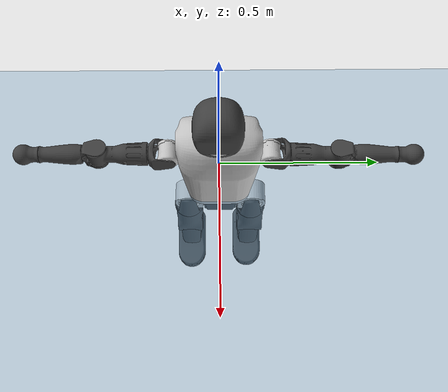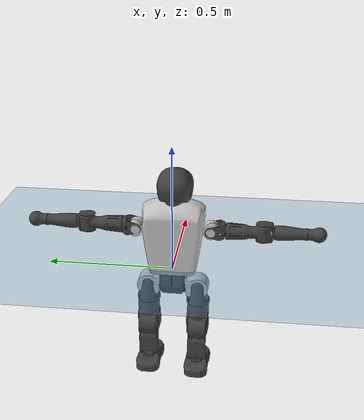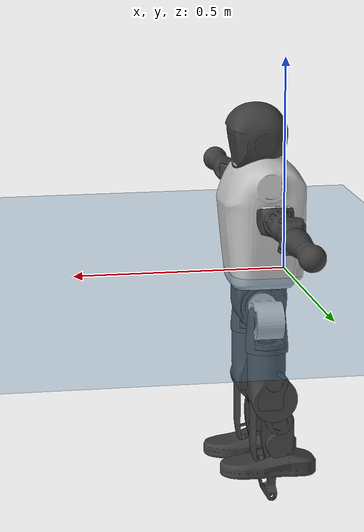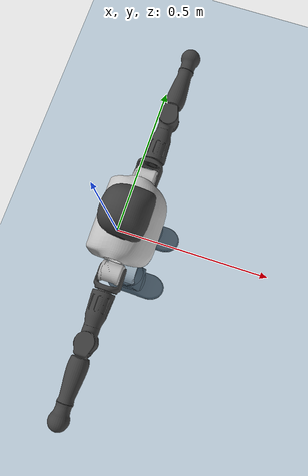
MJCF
<mujoco model="T1">
  <compiler angle="radian" assetdir="assets" balanceinertia="true" inertiafromgeom="false"/>

  <option timestep="0.005" density="1.2" viscosity="2e-05"/>

  <size nkey="1"/>

  <visual>
    <quality shadowsize="8192"/>
    <map shadowclip="0.5"/>
  </visual>

  <default>
    <default class="/">
      <joint armature="0.01" damping="0.01" frictionloss="0.1"/>
      <geom contype="0" conaffinity="0" group="1" solref="-1000 -80"/>
      <site size="0.01 0.005 0.005" group="5"/>
      <general forcelimited="true" biastype="affine" gainprm="25" biasprm="0 -25 -0.6"/>
      <default class="t1">
        <geom rgba="0.25 0.25 0.25 1"/>
        <default class="visual">
          <geom type="mesh" group="2"/>
        </default>
        <default class="collision">
          <geom group="3"/>
        </default>
        <default class="foot">
          <geom size="0.1115 0.05 0.015" type="box" condim="6" group="4" priority="1" solimp="0.015 1 0.015"/>
        </default>
        <default class="reward_collision_sphere">
          <geom group="5" rgba="1 0 0 1"/>
        </default>
      </default>
    </default>
  </default>

  <asset>
    <texture type="skybox" colorspace="auto" name="//unnamed_texture_0" builtin="gradient" rgb1="0.95 0.95 0.95" rgb2="0.95 0.95 0.95" width="100" height="600"/>
    <texture type="2d" colorspace="auto" name="texplane" builtin="checker" rgb1="0.345 0.575 0.748" rgb2="0.345 0.575 0.748" markrgb="1 1 1" width="512" height="512"/>
    <material name="MatPlane" class="/" texture="texplane" texuniform="true" texrepeat="2 2" specular="0.9"/>
    <mesh name="Trunk" class="/" file="Trunk.stl"/>
    <mesh name="H1" class="/" file="H1.stl"/>
    <mesh name="H2" class="/" file="H2.stl"/>
    <mesh name="AL1" class="/" file="AL1.stl"/>
    <mesh name="AL2" class="/" file="AL2.stl"/>
    <mesh name="AL3" class="/" file="AL3.stl"/>
    <mesh name="left_hand_link" class="/" file="left_hand_link.stl"/>
    <mesh name="AR1" class="/" file="AR1.stl"/>
    <mesh name="AR2" class="/" file="AR2.stl"/>
    <mesh name="AR3" class="/" file="AR3.stl"/>
    <mesh name="right_hand_link" class="/" file="right_hand_link.stl"/>
    <mesh name="Waist" class="/" file="Waist.stl"/>
    <mesh name="Hip_Pitch_Left" class="/" file="Hip_Pitch_Left.stl"/>
    <mesh name="Hip_Roll_Left" class="/" file="Hip_Roll_Left.stl"/>
    <mesh name="Hip_Yaw_Left" class="/" file="Hip_Yaw_Left.stl"/>
    <mesh name="Shank_Left" class="/" file="Shank_Left.stl"/>
    <mesh name="Ankle_Cross_Left" class="/" file="Ankle_Cross_Left.stl"/>
    <mesh name="left_foot_link" class="/" file="left_foot_link.stl"/>
    <mesh name="Hip_Pitch_Right" class="/" file="Hip_Pitch_Right.stl"/>
    <mesh name="Hip_Roll_Right" class="/" file="Hip_Roll_Right.stl"/>
    <mesh name="Hip_Yaw_Right" class="/" file="Hip_Yaw_Right.stl"/>
    <mesh name="Shank_Right" class="/" file="Shank_Right.stl"/>
    <mesh name="Ankle_Cross_Right" class="/" file="Ankle_Cross_Right.stl"/>
    <mesh name="right_foot_link" class="/" file="right_foot_link.stl"/>
  </asset>

  <worldbody>
    <geom name="floor" class="/" size="100 100 0.125" type="plane" group="0" material="MatPlane"/>
    <light name="toplight_shadow" class="/" pos="0 0 5" dir="0.0990148 0.0990148 -0.990148" type="directional" ambient="0.04 0.04 0.04" diffuse="0.55 0.55 0.55" specular="0.12 0.12 0.12"/>
    <light name="toplight_fill" class="/" pos="0 0 5" dir="0.0990148 0.0990148 -0.990148" type="directional" castshadow="false" ambient="0.04 0.04 0.04" diffuse="0.3 0.3 0.3" specular="0.08 0.08 0.08"/>
    <body name="trunk" childclass="t1" pos="0.000225672 -0.00019837 0.000373969" quat="1 0.000319432 -0.000340606 -5.14169e-05">
      <inertial pos="0.051361 -0.00194502 0.0705301" quat="0.999801 0.00183283 -0.0184223 0.00746719" mass="7.89589" diaginertia="0.0693982 0.0685076 0.00904103"/>
      <joint name="//unnamed_joint_0" type="free" armature="0" damping="0" frictionloss="0"/>
      <geom name="//unnamed_geom_1" class="visual" rgba="0.76 0.76 0.76 1" mesh="Trunk"/>
      <geom name="//unnamed_geom_2" class="collision" size="0.0650234 0.0866979 0.130047" pos="0.0565755 0 0.0825632" type="box"/>
      <geom name="//unnamed_geom_3" class="reward_collision_sphere" size="0.0997026" pos="0.0565755 0 0.0688027"/>
      <geom name="//unnamed_geom_4" class="reward_collision_sphere" size="0.0130047" pos="0.0565755 0.0824487 0"/>
      <geom name="//unnamed_geom_5" class="reward_collision_sphere" size="0.0130047" pos="0.0565755 -0.0824487 0"/>
      <geom name="//unnamed_geom_6" class="reward_collision_sphere" size="0.0130047" pos="0.0565755 0.103788 0.123845"/>
      <geom name="//unnamed_geom_7" class="reward_collision_sphere" size="0.0130047" pos="0.0565755 -0.103788 0.123845"/>
      <site name="imu" pos="-0.011822 0.00336659 0.0133919" size="0.00866979"/>
      <camera name="track" pos="0 -1.93997 0" quat="0.707107 0.707107 0 0" mode="trackcom"/>
      <camera name="ego_camera" pos="0.115037 0 0.288971" quat="-0.5 -0.5 0.5 0.5"/>
      <body name="H1" pos="0.0552022 -0.0022387 0.167407" quat="0.999999 0.000897186 0.000576179 6.39965e-05">
        <inertial pos="-0.000407014 -0.00335653 0.0374638" quat="0.759146 -0.00732521 0.0110872 0.650785" mass="0.281679" diaginertia="0.000175539 0.000191174 2.27476e-05"/>
        <joint name="AAHead_yaw" pos="0 0 0" axis="0.000933795 -0.00328735 0.999994" range="-1.52145 1.60252" armature="0.0097264" damping="0.0202404" frictionloss="0.0755369"/>
        <geom name="//unnamed_geom_8" class="visual" mesh="H1"/>
        <body name="H2" pos="-0.00135969 0.00115501 0.0406176" quat="1 -0.000271362 0.000349996 -0.0001716">
          <inertial pos="0.00463605 -0.000378258 0.0692835" quat="0.989881 0.104337 -0.0704365 -0.0654827" mass="0.39699" diaginertia="0.00155898 0.00158654 0.000259067"/>
          <joint name="Head_pitch" pos="0 0 0" axis="0.0029345 -0.999921 0.0122185" stiffness="0.00427262" range="-1.21844 0.376692" armature="0.0087898" damping="0" frictionloss="0.0887259"/>
          <geom name="//unnamed_geom_9" class="visual" mesh="H2"/>
          <geom name="//unnamed_geom_10" class="collision" size="0.0693583" pos="0.00942925 0 0.0756829"/>
          <geom name="//unnamed_geom_11" class="reward_collision_sphere" size="0.0780281" pos="0.0188585 0 0.0688027"/>
        </body>
      </body>
      <body name="AL1" pos="0.0539262 0.103516 0.151183" quat="0.999999 -0.000715295 0.000510193 -0.00107565">
        <inertial pos="0.0021491 0.0460907 -0.00129318" quat="0.510975 0.488225 -0.508565 0.491836" mass="0.331313" diaginertia="0.000984 0.00110061 4.60587e-05"/>
        <joint name="Left_Shoulder_Pitch" pos="0 0 0" axis="0.0122307 0.999913 0.0048741" stiffness="0.00972871" range="-3.29156 1.18796" armature="0.00953062" damping="0.0173722" frictionloss="0.0865527"/>
        <geom name="//unnamed_geom_12" class="visual" rgba="0.76 0.76 0.76 1" mesh="AL1"/>
        <body name="AL2" pos="0.00341925 0.0448729 0.00264718" quat="0.999999 0.000481796 -0.000178457 -0.00105418">
          <inertial pos="0.00688551 0.0379689 -0.000671751" quat="0.487983 0.507503 -0.485817 0.517972" mass="0.0988017" diaginertia="0.000292448 0.000293018 2.60849e-05"/>
          <joint name="Left_Shoulder_Roll" pos="0 0 0" axis="-0.999868 0.0109676 -0.0119678" range="-1.60848 1.70984" armature="0.00971446" damping="0.0174088" frictionloss="0.0748798"/>
          <geom name="//unnamed_geom_13" class="visual" mesh="AL2"/>
          <body name="AL3" pos="0.00338568 0.0579978 0.00180685" quat="0.999999 -0.00109301 0.000527592 -0.000813455">
            <inertial pos="0.000773671 0.0829506 2.24277e-06" quat="0.706556 0.707657 9.2659e-06 9.9077e-05" mass="0.652349" diaginertia="0.00942272 0.01077 9.13188e-05"/>
            <joint name="Left_Elbow_Pitch" pos="0 0 0" axis="0.00100638 -0.999979 -0.00643578" stiffness="0.0209099" range="-2.323 2.24375" armature="0.00835122" damping="0.0117576" frictionloss="0.0825881"/>
            <geom name="//unnamed_geom_14" class="visual" mesh="AL3"/>
            <geom name="//unnamed_geom_15" class="collision" size="0.0260094 0.0650234" pos="0 0.0484992 0" quat="0.707105 0.707108 0 0" type="cylinder"/>
            <geom name="//unnamed_geom_16" class="reward_collision_sphere" size="0.0312112"/>
            <body name="left_hand_link" pos="0.000957949 0.140633 0.00222735" quat="1 3.35581e-05 -7.40646e-05 -0.000685464">
              <inertial pos="-0.000234917 0.103971 0.00145734" quat="0.705955 0.708252 0.00275103 0.00049852" mass="0.220274" diaginertia="0.00648301 0.00716574 3.32756e-05"/>
              <joint name="Left_Elbow_Yaw" pos="0 0 0" axis="-6.98585e-05 0.00044428 1" range="-2.43612 0.00301834" armature="0.00851236" damping="0.00406745" frictionloss="0.0764814"/>
              <geom name="//unnamed_geom_17" class="visual" mesh="left_hand_link"/>
              <geom name="//unnamed_geom_18" class="collision" size="0.0260094 0.0758607" pos="0 0.126098 0" quat="0.707105 0.707108 0 0" type="cylinder"/>
              <geom name="//unnamed_geom_19" class="reward_collision_sphere" size="0.043349"/>
              <geom name="//unnamed_geom_20" class="reward_collision_sphere" size="0.0303443" pos="0 0.106698 0"/>
              <geom name="//unnamed_geom_21" class="reward_collision_sphere" size="0.0303443" pos="0 0.208547 0"/>
            </body>
          </body>
        </body>
      </body>
      <body name="AR1" pos="0.0545372 -0.101742 0.152059" quat="0.999999 -0.000417247 0.00134452 0.00062575">
        <inertial pos="-0.00151429 -0.0458269 0.00170351" quat="0.503972 0.496046 -0.503955 0.495964" mass="0.352602" diaginertia="0.00100372 0.00106658 4.50585e-05"/>
        <joint name="Right_Shoulder_Pitch" pos="0 0 0" axis="0.0126342 -0.999915 -0.00332644" range="-1.25732 3.27296" armature="0.0089188" damping="0.00633442" frictionloss="0.0873096"/>
        <geom name="//unnamed_geom_22" class="visual" rgba="0.76 0.76 0.76 1" mesh="AR1"/>
        <body name="AR2" pos="0.00130805 -0.0449289 -0.000701124" quat="0.999999 0.000952893 0.000767866 3.73941e-05">
          <inertial pos="0.00148746 -0.0339695 -0.00108148" quat="0.503327 0.4919 -0.516039 0.488263" mass="0.109878" diaginertia="0.000312774 0.000316619 2.72533e-05"/>
          <joint name="Right_Shoulder_Roll" pos="0 0 0" axis="-0.999996 0.000106246 0.00286621" stiffness="0.00459633" range="-1.69516 1.59907" armature="0.00829809" damping="0.0203874" frictionloss="0.0912839"/>
          <geom name="//unnamed_geom_23" class="visual" mesh="AR2"/>
          <body name="AR3" pos="-0.00234312 -0.0611499 -0.000626139" quat="1 0.00024694 5.9759e-05 0.000384396">
            <inertial pos="-0.00018676 -0.0854077 -0.00106404" quat="0.699147 0.714936 0.00383698 0.00678614" mass="0.642757" diaginertia="0.0092812 0.0111638 9.24881e-05"/>
            <joint name="Right_Elbow_Pitch" pos="0 0 0" axis="-0.00294705 0.999995 0.000792144" range="-2.26734 2.27903" armature="0.00783866" damping="0.0149218" frictionloss="0.0796064"/>
            <geom name="//unnamed_geom_24" class="visual" mesh="AR3"/>
            <geom name="//unnamed_geom_25" class="collision" size="0.0260094 0.0650234" pos="0 -0.0484992 0" quat="0.707105 0.707108 0 0" type="cylinder"/>
            <geom name="//unnamed_geom_26" class="reward_collision_sphere" size="0.0312112"/>
            <body name="right_hand_link" pos="0.000625031 -0.144139 0.00264629" quat="0.999999 -0.000439758 -0.00114084 -8.05605e-06">
              <inertial pos="0.00166287 -0.106015 -0.000766057" quat="0.708974 0.705229 0.00280621 -0.000677542" mass="0.223516" diaginertia="0.0061127 0.00707645 3.38607e-05"/>
              <joint name="Right_Elbow_Yaw" pos="0 0 0" axis="-0.000348099 -0.00836248 0.999965" range="-0.00656422 2.47991" armature="0.00760442" damping="0.00397675" frictionloss="0.0882469"/>
              <geom name="//unnamed_geom_27" class="visual" mesh="right_hand_link"/>
              <geom name="//unnamed_geom_28" class="collision" size="0.0260094 0.0758607" pos="0 -0.126098 0" quat="0.707105 0.707108 0 0" type="cylinder"/>
              <geom name="//unnamed_geom_29" class="reward_collision_sphere" size="0.043349"/>
              <geom name="//unnamed_geom_30" class="reward_collision_sphere" size="0.0303443" pos="0 -0.106698 0"/>
              <geom name="//unnamed_geom_31" class="reward_collision_sphere" size="0.0303443" pos="0 -0.208547 0"/>
            </body>
          </body>
        </body>
      </body>
      <body name="Waist" pos="0.060842 0.00326659 -0.0796732" quat="1 -0.000685834 0.000289248 0.000179974">
        <inertial pos="0.000286914 -0.000863658 0.00499254" quat="0.985712 -0.00466275 -0.16836 0.00215635" mass="1.7064" diaginertia="0.00397692 0.00461771 0.000744285"/>
        <joint name="Waist" pos="0 0 0" axis="0.00680067 0.00761001 0.999948" range="-1.61961 1.61924" armature="0.00877522" damping="0.0251471" frictionloss="0.0830653"/>
        <geom name="//unnamed_geom_32" class="visual" mesh="Waist"/>
        <body name="Hip_Pitch_Left" pos="0.00176419 0.102179 0.00123105" quat="1 0.000288981 0.000242499 -0.000760138">
          <inertial pos="-0.000493844 -0.00929025 -0.0124587" quat="0.974682 0.222889 0.0177634 -0.000495069" mass="0.634152" diaginertia="0.00130277 0.00118335 0.000187333"/>
          <joint name="Left_Hip_Pitch" pos="0 0 0" axis="0.0196563 0.999785 -0.00655211" stiffness="0.00644648" range="-1.77714 1.60362" armature="0.00883887" damping="0.028364" frictionloss="0.0870013"/>
          <geom name="//unnamed_geom_33" class="visual" rgba="0.76 0.76 0.76 1" mesh="Hip_Pitch_Left"/>
          <body name="Hip_Roll_Left" pos="0.00260321 -0.000799719 -0.0151649" quat="1 0.000373791 -1.78627e-05 -0.000122004">
            <inertial pos="0.00312085 0.0010912 -0.0401418" quat="0.707988 -0.00975978 -0.00783611 0.706113" mass="0.249572" diaginertia="0.00128708 0.00130292 7.90266e-05"/>
            <joint name="Left_Hip_Roll" pos="0 0 0" axis="-1 0.000309589 9.5286e-05" range="-1.51343 0.152944" armature="0.00878685" damping="0.00773779" frictionloss="0.0882307"/>
            <geom name="//unnamed_geom_34" class="visual" mesh="Hip_Roll_Left"/>
            <geom name="//unnamed_geom_35" class="reward_collision_sphere" size="0.0476838"/>
            <body name="Hip_Yaw_Left" pos="-0.00211712 0.00114265 -0.0542188" quat="1 -0.000145999 -8.99658e-05 -0.000695328">
              <inertial pos="-0.00579332 -0.000895998 -0.0623187" quat="0.702761 -0.0394619 -0.036131 0.709412" mass="1.37203" diaginertia="0.0195767 0.0224618 0.000411826"/>
              <joint name="Left_Hip_Yaw" pos="0 0 0" axis="-0.00400432 -0.000822073 -0.999992" stiffness="0.0112539" range="-1.00546 1.04874" armature="0.00884106" damping="0" frictionloss="0.0859107"/>
              <geom name="//unnamed_geom_36" class="visual" mesh="Hip_Yaw_Left"/>
              <geom name="//unnamed_geom_37" class="collision" size="0.043349 0.0693583" type="cylinder"/>
              <body name="Shank_Left" pos="-0.0115909 -0.00235051 -0.0931747" quat="0.999999 0.000625842 0.000670713 -0.000516634">
                <inertial pos="-0.00513942 0.00275723 -0.0842244" quat="0.997617 -0.000843368 -0.0228447 0.0651006" mass="1.14301" diaginertia="0.0247011 0.0296863 0.000277602"/>
                <joint name="Left_Knee_Pitch" pos="0 0 0" axis="-0.00220286 0.999993 0.00295038" range="0.0493738 2.33399" armature="0.00981825" damping="0.00901653" frictionloss="0.0853139"/>
                <geom name="//unnamed_geom_38" class="visual" mesh="Shank_Left"/>
                <geom name="//unnamed_geom_39" class="collision" size="0.043349 0.0650234" pos="0 0 -0.0825632" type="cylinder"/>
                <geom name="//unnamed_geom_40" class="reward_collision_sphere" size="0.0563536"/>
                <body name="Ankle_Cross_Left" pos="-0.00285379 -0.00132072 -0.191039" quat="1 0.000789533 -0.00045264 -1.73472e-05">
                  <inertial pos="-0.00466571 0.00205695 -0.00297826" quat="0.448092 0.559134 0.542166 0.438907" mass="0.0480244" diaginertia="2.12316e-05 2.14181e-05 1.68637e-06"/>
                  <joint name="Left_Ankle_Pitch" pos="0 0 0" axis="-0.0050193 0.999938 0.00996168" range="-0.813793 0.38842" armature="0.00771739" damping="0.0282757" frictionloss="0.084058"/>
                  <geom name="//unnamed_geom_41" class="visual" mesh="Ankle_Cross_Left"/>
                  <body name="left_foot_link" pos="-0.000859214 -0.0013149 -0.00647086" quat="0.999999 -0.001174 -3.36515e-05 -0.000544116">
                    <inertial pos="-0.00263156 0.00134031 -0.00401911" quat="0.00103547 0.620376 0.00315349 0.784297" mass="0.431823" diaginertia="0.00203832 0.00204879 0.000347771"/>
                    <joint name="Left_Ankle_Roll" pos="0 0 0" axis="-0.999881 0.0112794 -0.0104925" stiffness="0.00650041" range="-0.47126 0.389487" armature="0.00877436" damping="0" frictionloss="0.0913452"/>
                    <geom name="//unnamed_geom_42" class="visual" mesh="left_foot_link"/>
                    <geom name="left_foot" class="foot" size="0.109742 0.0338955 0.0142186" pos="0.00942925 0 -0.0103204"/>
                    <geom name="//unnamed_geom_44" class="reward_collision_sphere" size="0.0450829" pos="0.00942925 0 -0.0103204"/>
                    <geom name="//unnamed_geom_45" class="reward_collision_sphere" size="0.0260094" pos="0.0895779 -0.0223097 -0.0103204"/>
                    <geom name="//unnamed_geom_46" class="reward_collision_sphere" size="0.0260094" pos="-0.0660048 -0.0223097 -0.0103204"/>
                    <site name="left_foot" class="foot" pos="0.00942925 0 -0.0103204" size="0.00866979"/>
                  </body>
                </body>
              </body>
            </body>
          </body>
        </body>
        <body name="Hip_Pitch_Right" pos="-0.00224933 -0.101299 -0.00306762" quat="0.999999 0.000386362 -0.000229808 -0.00103796">
          <inertial pos="0.000332252 0.0103257 -0.0138407" quat="0.973784 -0.226889 0.0157385 -0.00428399" mass="0.68531" diaginertia="0.00139261 0.00129287 0.000199961"/>
          <joint name="Right_Hip_Pitch" pos="0 0 0" axis="-0.000216406 -0.999999 0.00169683" range="-1.55063 1.79799" armature="0.00861701" damping="0" frictionloss="0.0956595"/>
          <geom name="//unnamed_geom_47" class="visual" rgba="0.76 0.76 0.76 1" mesh="Hip_Pitch_Right"/>
          <body name="Hip_Roll_Right" pos="-0.000470836 -0.00210525 -0.0129566" quat="0.999999 -0.000283569 -5.23604e-05 0.00127678">
            <inertial pos="-0.000964427 0.00194951 -0.0381801" quat="0.706801 -0.00737502 -0.00562572 0.707352" mass="0.247684" diaginertia="0.00126714 0.00133066 7.8854e-05"/>
            <joint name="Right_Hip_Roll" pos="0 0 0" axis="-0.999982 0.0059898 7.48618e-05" range="-0.203139 1.58038" armature="0.00879494" damping="0.0185896" frictionloss="0.0854482"/>
            <geom name="//unnamed_geom_48" class="visual" mesh="Hip_Roll_Right"/>
            <geom name="//unnamed_geom_49" class="reward_collision_sphere" size="0.0476838"/>
            <body name="Hip_Yaw_Right" pos="0.000847858 -0.000341555 -0.0594369" quat="1 -0.000237785 0.000169876 0.000253941">
              <inertial pos="-0.00446394 -0.00285027 -0.0592693" quat="0.717424 -0.0278711 -0.0289812 0.695475" mass="1.44781" diaginertia="0.0187691 0.0207816 0.000407593"/>
              <joint name="Right_Hip_Yaw" pos="0 0 0" axis="0.0119232 -0.0136321 -0.999836" stiffness="0.0158713" range="-0.965958 1.05613" armature="0.0086571" damping="0.0155315" frictionloss="0.0913719"/>
              <geom name="//unnamed_geom_50" class="visual" mesh="Hip_Yaw_Right"/>
              <geom name="//unnamed_geom_51" class="collision" size="0.043349 0.0693583" type="cylinder"/>
              <body name="Shank_Right" pos="-0.0119779 0.00124466 -0.095333" quat="1 -2.79914e-05 0.0004599 -0.000327277">
                <inertial pos="-0.00602415 0.00174158 -0.0865461" quat="0.999258 -0.00349086 -0.0209172 -0.0321397" mass="1.10815" diaginertia="0.0259932 0.0296035 0.000294835"/>
                <joint name="Right_Knee_Pitch" pos="0 0 0" axis="-0.00737886 -0.99988 -0.0135939" stiffness="0.00454967" range="-2.39542 0.0296237" armature="0.00890102" damping="0.0196583" frictionloss="0.097967"/>
                <geom name="//unnamed_geom_52" class="visual" mesh="Shank_Right"/>
                <geom name="//unnamed_geom_53" class="collision" size="0.043349 0.0650234" pos="0 0 -0.0825632" type="cylinder"/>
                <geom name="//unnamed_geom_54" class="reward_collision_sphere" size="0.0563536"/>
                <body name="Ankle_Cross_Right" pos="0.000355953 -0.000207136 -0.193777" quat="1 -0.0001737 0.000147545 -0.000155727">
                  <inertial pos="-0.00346593 -0.00103865 -0.00470389" quat="0.437253 0.546108 0.561556 0.44185" mass="0.0473756" diaginertia="2.13064e-05 2.18726e-05 1.69813e-06"/>
                  <joint name="Right_Ankle_Pitch" pos="0 0 0" axis="0.0122387 -0.999908 0.00587672" stiffness="0.0187535" range="-0.33653 0.849668" armature="0.0088107" damping="0.00248645" frictionloss="0.0975799"/>
                  <geom name="//unnamed_geom_55" class="visual" mesh="Ankle_Cross_Right"/>
                  <body name="right_foot_link" pos="0.000887051 -0.00131322 -0.00730715" quat="0.999999 0.000636428 0.00083109 0.000161897">
                    <inertial pos="0.00249367 -0.00120088 -0.00585884" quat="0.000761268 0.616433 -0.00581865 0.787385" mass="0.460461" diaginertia="0.00204409 0.00214658 0.00033763"/>
                    <joint name="Right_Ankle_Roll" pos="0 0 0" axis="-0.999999 -0.000946927 -0.00110963" range="-0.492013 0.488735" armature="0.00830917" damping="0.0103877" frictionloss="0.0896268"/>
                    <geom name="//unnamed_geom_56" class="visual" mesh="right_foot_link"/>
                    <geom name="right_foot" class="foot" size="0.110695 0.038935 0.0127715" pos="0.00942925 0 -0.0103204"/>
                    <geom name="//unnamed_geom_58" class="reward_collision_sphere" size="0.0346792"/>
                    <geom name="//unnamed_geom_59" class="reward_collision_sphere" size="0.0260094" pos="0.00942925 0 -0.0103204"/>
                    <geom name="//unnamed_geom_60" class="reward_collision_sphere" size="0.0260094" pos="0.0895779 0.0223097 -0.0103204"/>
                    <geom name="//unnamed_geom_61" class="reward_collision_sphere" size="0.0260094" pos="-0.0660048 0.0223097 -0.0103204"/>
                    <site name="right_foot" class="foot" pos="0.00942925 0 -0.0103204" size="0.00866979"/>
                  </body>
                </body>
              </body>
            </body>
          </body>
        </body>
      </body>
    </body>
  </worldbody>

  <contact>
    <pair class="/" geom1="floor" geom2="left_foot" name="//unnamed_contact_0"/>
    <pair class="/" geom1="floor" geom2="right_foot" name="//unnamed_contact_1"/>
  </contact>

  <actuator>
    <general name="AAHead_yaw" class="/" joint="AAHead_yaw" forcerange="-5.51094 5.51094" gainprm="22.3488" biasprm="0 -22.3488 -0.565005"/>
    <general name="Head_pitch" class="/" joint="Head_pitch" forcerange="-6.34734 6.34734" gainprm="22.3488" biasprm="0 -22.3488 -0.565005"/>
    <general name="Left_Shoulder_Pitch" class="/" joint="Left_Shoulder_Pitch" forcerange="-16.2106 16.2106" gainprm="22.3488" biasprm="0 -22.3488 -0.565005"/>
    <general name="Left_Shoulder_Roll" class="/" joint="Left_Shoulder_Roll" forcerange="-15.9358 15.9358" gainprm="22.3488" biasprm="0 -22.3488 -0.565005"/>
    <general name="Left_Elbow_Pitch" class="/" joint="Left_Elbow_Pitch" forcerange="-15.5913 15.5913" gainprm="22.3488" biasprm="0 -22.3488 -0.565005"/>
    <general name="Left_Elbow_Yaw" class="/" joint="Left_Elbow_Yaw" forcerange="-14.62 14.62" gainprm="22.3488" biasprm="0 -22.3488 -0.565005"/>
    <general name="Right_Shoulder_Pitch" class="/" joint="Right_Shoulder_Pitch" forcerange="-15.9426 15.9426" gainprm="22.3488" biasprm="0 -22.3488 -0.565005"/>
    <general name="Right_Shoulder_Roll" class="/" joint="Right_Shoulder_Roll" forcerange="-15.5767 15.5767" gainprm="22.3488" biasprm="0 -22.3488 -0.565005"/>
    <general name="Right_Elbow_Pitch" class="/" joint="Right_Elbow_Pitch" forcerange="-14.1633 14.1633" gainprm="22.3488" biasprm="0 -22.3488 -0.565005"/>
    <general name="Right_Elbow_Yaw" class="/" joint="Right_Elbow_Yaw" forcerange="-15.3658 15.3658" gainprm="22.3488" biasprm="0 -22.3488 -0.565005"/>
    <general name="Waist" class="/" joint="Waist" forcerange="-28.5695 28.5695" gainprm="22.3488" biasprm="0 -22.3488 -0.565005"/>
    <general name="Left_Hip_Pitch" class="/" joint="Left_Hip_Pitch" forcerange="-42.6685 42.6685" gainprm="22.3488" biasprm="0 -22.3488 -0.565005"/>
    <general name="Left_Hip_Roll" class="/" joint="Left_Hip_Roll" forcerange="-28.2664 28.2664" gainprm="22.3488" biasprm="0 -22.3488 -0.565005"/>
    <general name="Left_Hip_Yaw" class="/" joint="Left_Hip_Yaw" forcerange="-28.8551 28.8551" gainprm="22.3488" biasprm="0 -22.3488 -0.565005"/>
    <general name="Left_Knee_Pitch" class="/" joint="Left_Knee_Pitch" forcerange="-50.7443 50.7443" gainprm="22.3488" biasprm="0 -22.3488 -0.565005"/>
    <general name="Left_Ankle_Pitch" class="/" joint="Left_Ankle_Pitch" forcerange="-18.5708 18.5708" gainprm="22.3488" biasprm="0 -22.3488 -0.565005"/>
    <general name="Left_Ankle_Roll" class="/" joint="Left_Ankle_Roll" forcerange="-13.1376 13.1376" gainprm="22.3488" biasprm="0 -22.3488 -0.565005"/>
    <general name="Right_Hip_Pitch" class="/" joint="Right_Hip_Pitch" forcerange="-36.7313 36.7313" gainprm="22.3488" biasprm="0 -22.3488 -0.565005"/>
    <general name="Right_Hip_Roll" class="/" joint="Right_Hip_Roll" forcerange="-28.3235 28.3235" gainprm="22.3488" biasprm="0 -22.3488 -0.565005"/>
    <general name="Right_Hip_Yaw" class="/" joint="Right_Hip_Yaw" forcerange="-28.7693 28.7693" gainprm="22.3488" biasprm="0 -22.3488 -0.565005"/>
    <general name="Right_Knee_Pitch" class="/" joint="Right_Knee_Pitch" forcerange="-55.5365 55.5365" gainprm="22.3488" biasprm="0 -22.3488 -0.565005"/>
    <general name="Right_Ankle_Pitch" class="/" joint="Right_Ankle_Pitch" forcerange="-15.7873 15.7873" gainprm="22.3488" biasprm="0 -22.3488 -0.565005"/>
    <general name="Right_Ankle_Roll" class="/" joint="Right_Ankle_Roll" forcerange="-13.8163 13.8163" gainprm="22.3488" biasprm="0 -22.3488 -0.565005"/>
  </actuator>

  <sensor>
    <gyro site="imu" name="imu_angular_velocity"/>
    <velocimeter site="imu" name="imu_linear_velocity"/>
    <framelinvel objtype="site" objname="left_foot" name="left_foot_global_linear_velocity"/>
    <framelinvel objtype="site" objname="right_foot" name="right_foot_global_linear_velocity"/>
  </sensor>

  <keyframe>
    <key name="home" qpos="0 0 0.6385 1 0 0 0 0 0 0 1.4 0 -0.4 0 -1.4 0 0.4 0 -0.4 0 0 0.8 -0.4 0 0.4 0 0 -0.8 0.4 0"/>
  </keyframe>
</mujoco>
